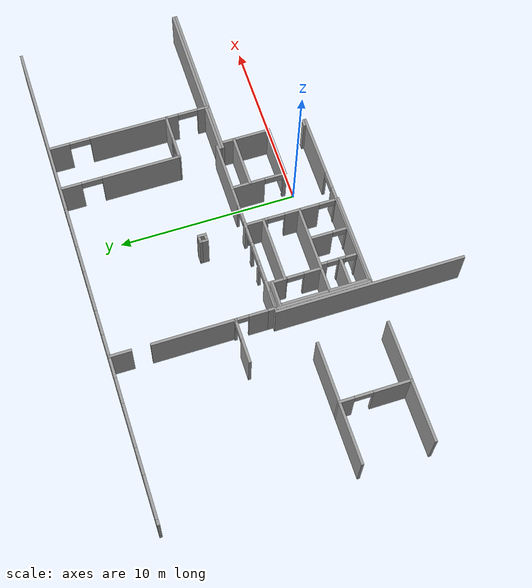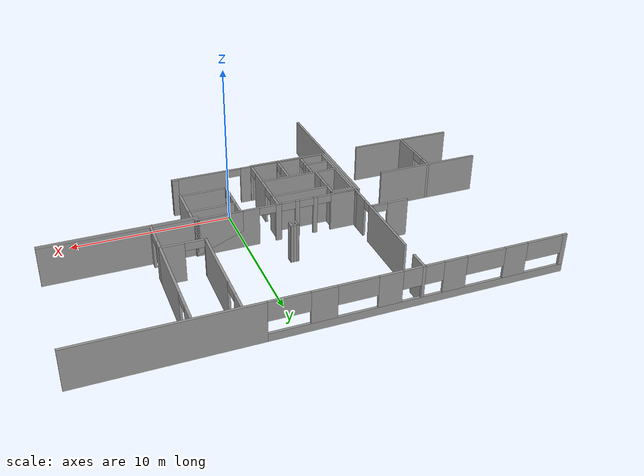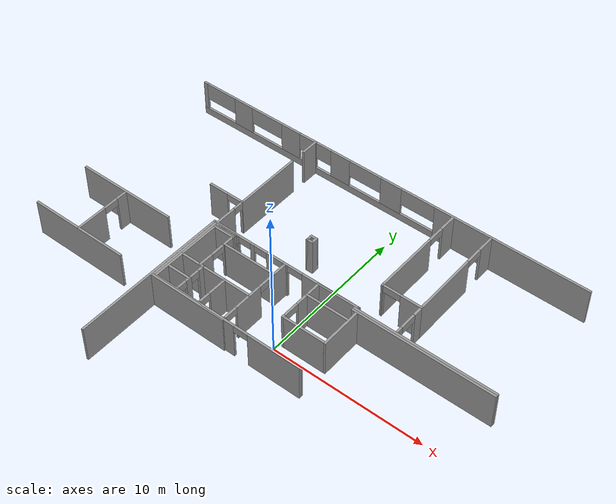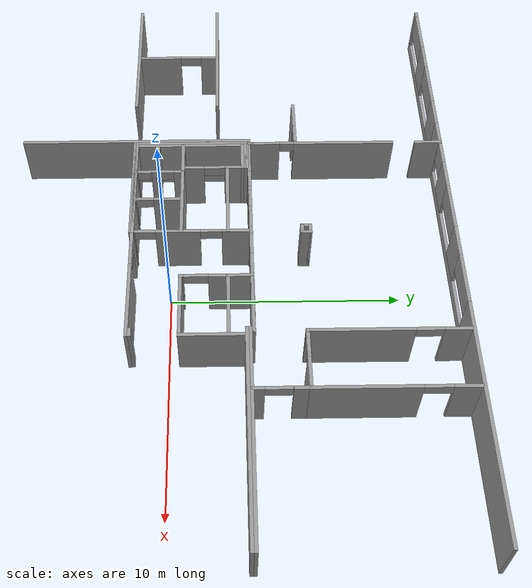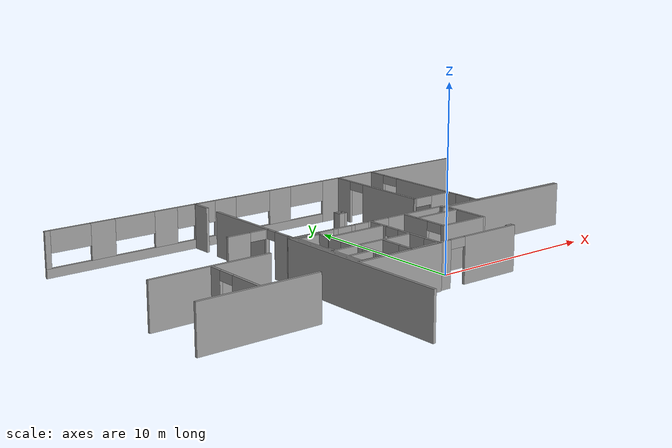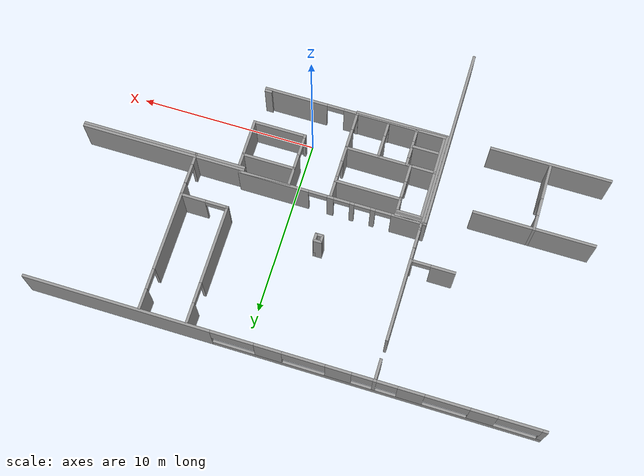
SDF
<sdf version="1.6">
 <model name="basement">
  <pose>-2.12617 -1.77824 0 0 -0 0</pose>
  <link name="Wall_108">
   <pose>2.7255 0.139626 0 0 -0 0</pose>
   <visual name="Wall_108_Visual_0">
    <pose>-2.26972 0 1.25 0 -0 0</pose>
    <geometry><box><size>0.710554 0.15 2.5</size></box></geometry>
    <material>
     <script><uri>file://media/materials/scripts/gazebo.material</uri><name>Gazebo/Grey</name></script>
     <ambient>1 1 1 1</ambient>
    </material>
   </visual>
   <collision name="Wall_108_Collision_0">
    <geometry><box><size>0.710554 0.15 2.5</size></box></geometry>
    <pose>-2.26972 0 1.25 0 -0 0</pose>
   </collision>
   <visual name="Wall_108_Visual_1">
    <pose>0.840079 0 1.25 0 -0 0</pose>
    <geometry><box><size>3.56984 0.15 2.5</size></box></geometry>
    <material>
     <script><uri>file://media/materials/scripts/gazebo.material</uri><name>Gazebo/Grey</name></script>
     <ambient>1 1 1 1</ambient>
    </material>
   </visual>
   <collision name="Wall_108_Collision_1">
    <geometry><box><size>3.56984 0.15 2.5</size></box></geometry>
    <pose>0.840079 0 1.25 0 -0 0</pose>
   </collision>
   <visual name="Wall_108_Visual_2">
    <pose>-1.42964 0 2.25 0 -0 0</pose>
    <geometry><box><size>0.969605 0.15 0.5</size></box></geometry>
    <material>
     <script><uri>file://media/materials/scripts/gazebo.material</uri><name>Gazebo/Grey</name></script>
     <ambient>1 1 1 1</ambient>
    </material>
   </visual>
   <collision name="Wall_108_Collision_2">
    <geometry><box><size>0.969605 0.15 0.5</size></box></geometry>
    <pose>-1.42964 0 2.25 0 -0 0</pose>
   </collision>
  </link>
  <link name="Wall_116">
   <collision name="Wall_116_Collision">
    <geometry><box><size>0.4 0.15 2.5</size></box></geometry>
    <pose>0 0 1.25 0 -0 0</pose>
   </collision>
   <visual name="Wall_116_Visual">
    <pose>0 0 1.25 0 -0 0</pose>
    <geometry><box><size>0.4 0.15 2.5</size></box></geometry>
    <material>
     <script><uri>file://media/materials/scripts/gazebo.material</uri><name>Gazebo/Grey</name></script>
     <ambient>1 1 1 1</ambient>
    </material>
   </visual>
   <pose>5.13257 0.268093 0 0 -0 0</pose>
  </link>
  <link name="Wall_146">
   <collision name="Wall_146_Collision">
    <geometry><box><size>5.25 0.15 2.5</size></box></geometry>
    <pose>0 0 1.25 0 -0 0</pose>
   </collision>
   <visual name="Wall_146_Visual">
    <pose>0 0 1.25 0 -0 0</pose>
    <geometry><box><size>5.25 0.15 2.5</size></box></geometry>
    <material>
     <script><uri>file://media/materials/scripts/gazebo.material</uri><name>Gazebo/Grey</name></script>
     <ambient>1 1 1 1</ambient>
    </material>
   </visual>
   <pose>-5.04892 2.61682 0 0 -0 1.5708</pose>
  </link>
  <link name="Wall_148">
   <collision name="Wall_148_Collision">
    <geometry><box><size>1.5 0.15 2.5</size></box></geometry>
    <pose>0 0 1.25 0 -0 0</pose>
   </collision>
   <visual name="Wall_148_Visual">
    <pose>0 0 1.25 0 -0 0</pose>
    <geometry><box><size>1.5 0.15 2.5</size></box></geometry>
    <material>
     <script><uri>file://media/materials/scripts/gazebo.material</uri><name>Gazebo/Grey</name></script>
     <ambient>1 1 1 1</ambient>
    </material>
   </visual>
   <pose>-4.23612 5.13065 0 0 -0 0</pose>
  </link>
  <link name="Wall_150">
   <collision name="Wall_150_Collision">
    <geometry><box><size>1.5 0.15 2.5</size></box></geometry>
    <pose>0 0 1.25 0 -0 0</pose>
   </collision>
   <visual name="Wall_150_Visual">
    <pose>0 0 1.25 0 -0 0</pose>
    <geometry><box><size>1.5 0.15 2.5</size></box></geometry>
    <material>
     <script><uri>file://media/materials/scripts/gazebo.material</uri><name>Gazebo/Grey</name></script>
     <ambient>1 1 1 1</ambient>
    </material>
   </visual>
   <pose>-4.23669 5.20302 0 0 -0 0</pose>
  </link>
  <link name="Wall_152">
   <collision name="Wall_152_Collision">
    <geometry><box><size>5.25 0.15 2.5</size></box></geometry>
    <pose>0 0 1.25 0 -0 0</pose>
   </collision>
   <visual name="Wall_152_Visual">
    <pose>0 0 1.25 0 -0 0</pose>
    <geometry><box><size>5.25 0.15 2.5</size></box></geometry>
    <material>
     <script><uri>file://media/materials/scripts/gazebo.material</uri><name>Gazebo/Grey</name></script>
     <ambient>1 1 1 1</ambient>
    </material>
   </visual>
   <pose>-2.49774 0.066434 0 0 -0 0</pose>
  </link>
  <link name="Wall_17">
   <collision name="Wall_17_Collision">
    <geometry><box><size>6.75 0.15 2.5</size></box></geometry>
    <pose>0 0 1.25 0 -0 0</pose>
   </collision>
   <visual name="Wall_17_Visual">
    <pose>0 0 1.25 0 -0 0</pose>
    <geometry><box><size>6.75 0.15 2.5</size></box></geometry>
    <material>
     <script><uri>file://media/materials/scripts/gazebo.material</uri><name>Gazebo/Grey</name></script>
     <ambient>1 1 1 1</ambient>
    </material>
   </visual>
   <pose>-10.8156 0.004484 0 0 -0 0</pose>
  </link>
  <link name="Wall_19">
   <collision name="Wall_19_Collision">
    <geometry><box><size>6.75 0.15 2.5</size></box></geometry>
    <pose>0 0 1.25 0 -0 0</pose>
   </collision>
   <visual name="Wall_19_Visual">
    <pose>0 0 1.25 0 -0 0</pose>
    <geometry><box><size>6.75 0.15 2.5</size></box></geometry>
    <material>
     <script><uri>file://media/materials/scripts/gazebo.material</uri><name>Gazebo/Grey</name></script>
     <ambient>1 1 1 1</ambient>
    </material>
   </visual>
   <pose>-10.8156 3.85656 0 0 -0 0</pose>
  </link>
  <link name="Wall_21">
   <pose>-10.8088 1.93156 0 0 0 -1.5708</pose>
   <visual name="Wall_21_Visual_0">
    <pose>-1.56265 0 1.25 0 -0 0</pose>
    <geometry><box><size>0.874704 0.15 2.5</size></box></geometry>
    <material>
     <script><uri>file://media/materials/scripts/gazebo.material</uri><name>Gazebo/Grey</name></script>
     <ambient>1 1 1 1</ambient>
    </material>
   </visual>
   <collision name="Wall_21_Collision_0">
    <geometry><box><size>0.874704 0.15 2.5</size></box></geometry>
    <pose>-1.56265 0 1.25 0 -0 0</pose>
   </collision>
   <visual name="Wall_21_Visual_1">
    <pose>0.933876 0 1.25 0 -0 0</pose>
    <geometry><box><size>2.13225 0.15 2.5</size></box></geometry>
    <material>
     <script><uri>file://media/materials/scripts/gazebo.material</uri><name>Gazebo/Grey</name></script>
     <ambient>1 1 1 1</ambient>
    </material>
   </visual>
   <collision name="Wall_21_Collision_1">
    <geometry><box><size>2.13225 0.15 2.5</size></box></geometry>
    <pose>0.933876 0 1.25 0 -0 0</pose>
   </collision>
   <visual name="Wall_21_Visual_2">
    <pose>-0.628773 0 2.25 0 -0 0</pose>
    <geometry><box><size>0.993048 0.15 0.5</size></box></geometry>
    <material>
     <script><uri>file://media/materials/scripts/gazebo.material</uri><name>Gazebo/Grey</name></script>
     <ambient>1 1 1 1</ambient>
    </material>
   </visual>
   <collision name="Wall_21_Collision_2">
    <geometry><box><size>0.993048 0.15 0.5</size></box></geometry>
    <pose>-0.628773 0 2.25 0 -0 0</pose>
   </collision>
  </link>
  <link name="Wall_23">
   <pose>-5.00676 8.62969 0 0 0 -1.5708</pose>
   <visual name="Wall_23_Visual_0">
    <pose>-1.06412 0 1.25 0 -0 0</pose>
    <geometry><box><size>4.62176 0.15 2.5</size></box></geometry>
    <material>
     <script><uri>file://media/materials/scripts/gazebo.material</uri><name>Gazebo/Grey</name></script>
     <ambient>1 1 1 1</ambient>
    </material>
   </visual>
   <collision name="Wall_23_Collision_0">
    <geometry><box><size>4.62176 0.15 2.5</size></box></geometry>
    <pose>-1.06412 0 1.25 0 -0 0</pose>
   </collision>
   <visual name="Wall_23_Visual_1">
    <pose>2.63296 0 1.25 0 -0 0</pose>
    <geometry><box><size>1.48408 0.15 2.5</size></box></geometry>
    <material>
     <script><uri>file://media/materials/scripts/gazebo.material</uri><name>Gazebo/Grey</name></script>
     <ambient>1 1 1 1</ambient>
    </material>
   </visual>
   <collision name="Wall_23_Collision_1">
    <geometry><box><size>1.48408 0.15 2.5</size></box></geometry>
    <pose>2.63296 0 1.25 0 -0 0</pose>
   </collision>
   <visual name="Wall_23_Visual_2">
    <pose>3.15649 0 1.25 0 -0 0</pose>
    <geometry><box><size>0.437027 0.15 2.5</size></box></geometry>
    <material>
     <script><uri>file://media/materials/scripts/gazebo.material</uri><name>Gazebo/Grey</name></script>
     <ambient>1 1 1 1</ambient>
    </material>
   </visual>
   <collision name="Wall_23_Collision_2">
    <geometry><box><size>0.437027 0.15 2.5</size></box></geometry>
    <pose>3.15649 0 1.25 0 -0 0</pose>
   </collision>
   <visual name="Wall_23_Visual_3">
    <pose>1.56762 0 2.25 0 -0 0</pose>
    <geometry><box><size>0.641714 0.15 0.5</size></box></geometry>
    <material>
     <script><uri>file://media/materials/scripts/gazebo.material</uri><name>Gazebo/Grey</name></script>
     <ambient>1 1 1 1</ambient>
    </material>
   </visual>
   <collision name="Wall_23_Collision_3">
    <geometry><box><size>0.641714 0.15 0.5</size></box></geometry>
    <pose>1.56762 0 2.25 0 -0 0</pose>
   </collision>
  </link>
  <link name="Wall_25">
   <pose>-6.22027 7.45768 0 0 -0 0</pose>
   <visual name="Wall_25_Visual_0">
    <pose>-0.572125 0 1.25 0 -0 0</pose>
    <geometry><box><size>1.35575 0.15 2.5</size></box></geometry>
    <material>
     <script><uri>file://media/materials/scripts/gazebo.material</uri><name>Gazebo/Grey</name></script>
     <ambient>1 1 1 1</ambient>
    </material>
   </visual>
   <collision name="Wall_25_Collision_0">
    <geometry><box><size>1.35575 0.15 2.5</size></box></geometry>
    <pose>-0.572125 0 1.25 0 -0 0</pose>
   </collision>
   <visual name="Wall_25_Visual_1">
    <pose>1.16237 0 1.25 0 -0 0</pose>
    <geometry><box><size>0.17525 0.15 2.5</size></box></geometry>
    <material>
     <script><uri>file://media/materials/scripts/gazebo.material</uri><name>Gazebo/Grey</name></script>
     <ambient>1 1 1 1</ambient>
    </material>
   </visual>
   <collision name="Wall_25_Collision_1">
    <geometry><box><size>0.17525 0.15 2.5</size></box></geometry>
    <pose>1.16237 0 1.25 0 -0 0</pose>
   </collision>
   <visual name="Wall_25_Visual_2">
    <pose>0.59025 0 2.25 0 -0 0</pose>
    <geometry><box><size>0.969 0.15 0.5</size></box></geometry>
    <material>
     <script><uri>file://media/materials/scripts/gazebo.material</uri><name>Gazebo/Grey</name></script>
     <ambient>1 1 1 1</ambient>
    </material>
   </visual>
   <collision name="Wall_25_Collision_2">
    <geometry><box><size>0.969 0.15 0.5</size></box></geometry>
    <pose>0.59025 0 2.25 0 -0 0</pose>
   </collision>
  </link>
  <link name="Wall_27">
   <collision name="Wall_27_Collision">
    <geometry><box><size>1.25 0.15 2.5</size></box></geometry>
    <pose>0 0 1.25 0 -0 0</pose>
   </collision>
   <visual name="Wall_27_Visual">
    <pose>0 0 1.25 0 -0 0</pose>
    <geometry><box><size>1.25 0.15 2.5</size></box></geometry>
    <material>
     <script><uri>file://media/materials/scripts/gazebo.material</uri><name>Gazebo/Grey</name></script>
     <ambient>1 1 1 1</ambient>
    </material>
   </visual>
   <pose>-4.99983 13.6109 0 0 -0 1.5708</pose>
  </link>
  <link name="Wall_29">
   <collision name="Wall_29_Collision">
    <geometry><box><size>10.5 0.15 2.5</size></box></geometry>
    <pose>0 0 1.25 0 -0 0</pose>
   </collision>
   <visual name="Wall_29_Visual">
    <pose>0 0 1.25 0 -0 0</pose>
    <geometry><box><size>10.5 0.15 2.5</size></box></geometry>
    <material>
     <script><uri>file://media/materials/scripts/gazebo.material</uri><name>Gazebo/Grey</name></script>
     <ambient>1 1 1 1</ambient>
    </material>
   </visual>
   <pose>-5.20099 0.119525 0 0 0 -1.5708</pose>
  </link>
  <link name="Wall_33">
   <pose>-0.0257 5.29795 0 0 -0 0</pose>
   <visual name="Wall_33_Visual_0">
    <pose>-4.2845 0 1.25 0 -0 0</pose>
    <geometry><box><size>1.93101 0.15 2.5</size></box></geometry>
    <material>
     <script><uri>file://media/materials/scripts/gazebo.material</uri><name>Gazebo/Grey</name></script>
     <ambient>1 1 1 1</ambient>
    </material>
   </visual>
   <collision name="Wall_33_Collision_0">
    <geometry><box><size>1.93101 0.15 2.5</size></box></geometry>
    <pose>-4.2845 0 1.25 0 -0 0</pose>
   </collision>
   <visual name="Wall_33_Visual_1">
    <pose>-2.30166 0 1.25 0 -0 0</pose>
    <geometry><box><size>0.26897 0.15 2.5</size></box></geometry>
    <material>
     <script><uri>file://media/materials/scripts/gazebo.material</uri><name>Gazebo/Grey</name></script>
     <ambient>1 1 1 1</ambient>
    </material>
   </visual>
   <collision name="Wall_33_Collision_1">
    <geometry><box><size>0.26897 0.15 2.5</size></box></geometry>
    <pose>-2.30166 0 1.25 0 -0 0</pose>
   </collision>
   <visual name="Wall_33_Visual_2">
    <pose>-1.1397 0 1.25 0 -0 0</pose>
    <geometry><box><size>0.254942 0.15 2.5</size></box></geometry>
    <material>
     <script><uri>file://media/materials/scripts/gazebo.material</uri><name>Gazebo/Grey</name></script>
     <ambient>1 1 1 1</ambient>
    </material>
   </visual>
   <collision name="Wall_33_Collision_2">
    <geometry><box><size>0.254942 0.15 2.5</size></box></geometry>
    <pose>-1.1397 0 1.25 0 -0 0</pose>
   </collision>
   <visual name="Wall_33_Visual_3">
    <pose>0.071064 0 1.25 0 -0 0</pose>
    <geometry><box><size>0.366595 0.15 2.5</size></box></geometry>
    <material>
     <script><uri>file://media/materials/scripts/gazebo.material</uri><name>Gazebo/Grey</name></script>
     <ambient>1 1 1 1</ambient>
    </material>
   </visual>
   <collision name="Wall_33_Collision_3">
    <geometry><box><size>0.366595 0.15 2.5</size></box></geometry>
    <pose>0.071064 0 1.25 0 -0 0</pose>
   </collision>
   <visual name="Wall_33_Visual_4">
    <pose>3.26793 0 1.25 0 -0 0</pose>
    <geometry><box><size>3.96414 0.15 2.5</size></box></geometry>
    <material>
     <script><uri>file://media/materials/scripts/gazebo.material</uri><name>Gazebo/Grey</name></script>
     <ambient>1 1 1 1</ambient>
    </material>
   </visual>
   <collision name="Wall_33_Collision_4">
    <geometry><box><size>3.96414 0.15 2.5</size></box></geometry>
    <pose>3.26793 0 1.25 0 -0 0</pose>
   </collision>
   <visual name="Wall_33_Visual_5">
    <pose>3.78189 0 1.25 0 -0 0</pose>
    <geometry><box><size>2.93622 0.15 2.5</size></box></geometry>
    <material>
     <script><uri>file://media/materials/scripts/gazebo.material</uri><name>Gazebo/Grey</name></script>
     <ambient>1 1 1 1</ambient>
    </material>
   </visual>
   <collision name="Wall_33_Collision_5">
    <geometry><box><size>2.93622 0.15 2.5</size></box></geometry>
    <pose>3.78189 0 1.25 0 -0 0</pose>
   </collision>
   <visual name="Wall_33_Visual_6">
    <pose>-2.87757 0 2.25 0 -0 0</pose>
    <geometry><box><size>0.882847 0.15 0.5</size></box></geometry>
    <material>
     <script><uri>file://media/materials/scripts/gazebo.material</uri><name>Gazebo/Grey</name></script>
     <ambient>1 1 1 1</ambient>
    </material>
   </visual>
   <collision name="Wall_33_Collision_6">
    <geometry><box><size>0.882847 0.15 0.5</size></box></geometry>
    <pose>-2.87757 0 2.25 0 -0 0</pose>
   </collision>
   <visual name="Wall_33_Visual_7">
    <pose>-1.71717 0 2.25 0 -0 0</pose>
    <geometry><box><size>0.9 0.15 0.5</size></box></geometry>
    <material>
     <script><uri>file://media/materials/scripts/gazebo.material</uri><name>Gazebo/Grey</name></script>
     <ambient>1 1 1 1</ambient>
    </material>
   </visual>
   <collision name="Wall_33_Collision_7">
    <geometry><box><size>0.9 0.15 0.5</size></box></geometry>
    <pose>-1.71717 0 2.25 0 -0 0</pose>
   </collision>
   <visual name="Wall_33_Visual_8">
    <pose>-0.562234 0 2.25 0 -0 0</pose>
    <geometry><box><size>0.9 0.15 0.5</size></box></geometry>
    <material>
     <script><uri>file://media/materials/scripts/gazebo.material</uri><name>Gazebo/Grey</name></script>
     <ambient>1 1 1 1</ambient>
    </material>
   </visual>
   <collision name="Wall_33_Collision_8">
    <geometry><box><size>0.9 0.15 0.5</size></box></geometry>
    <pose>-0.562234 0 2.25 0 -0 0</pose>
   </collision>
   <visual name="Wall_33_Visual_9">
    <pose>0.768692 0 2.25 0 -0 0</pose>
    <geometry><box><size>1.02866 0.15 0.5</size></box></geometry>
    <material>
     <script><uri>file://media/materials/scripts/gazebo.material</uri><name>Gazebo/Grey</name></script>
     <ambient>1 1 1 1</ambient>
    </material>
   </visual>
   <collision name="Wall_33_Collision_9">
    <geometry><box><size>1.02866 0.15 0.5</size></box></geometry>
    <pose>0.768692 0 2.25 0 -0 0</pose>
   </collision>
  </link>
  <link name="Wall_35">
   <pose>5.14294 10.7592 0 0 -0 1.5708</pose>
   <visual name="Wall_35_Visual_0">
    <pose>-1.14443 0 1.25 0 -0 0</pose>
    <geometry><box><size>4.46114 0.15 2.5</size></box></geometry>
    <material>
     <script><uri>file://media/materials/scripts/gazebo.material</uri><name>Gazebo/Grey</name></script>
     <ambient>1 1 1 1</ambient>
    </material>
   </visual>
   <collision name="Wall_35_Collision_0">
    <geometry><box><size>4.46114 0.15 2.5</size></box></geometry>
    <pose>-1.14443 0 1.25 0 -0 0</pose>
   </collision>
   <visual name="Wall_35_Visual_1">
    <pose>2.80026 0 1.25 0 -0 0</pose>
    <geometry><box><size>1.14948 0.15 2.5</size></box></geometry>
    <material>
     <script><uri>file://media/materials/scripts/gazebo.material</uri><name>Gazebo/Grey</name></script>
     <ambient>1 1 1 1</ambient>
    </material>
   </visual>
   <collision name="Wall_35_Collision_1">
    <geometry><box><size>1.14948 0.15 2.5</size></box></geometry>
    <pose>2.80026 0 1.25 0 -0 0</pose>
   </collision>
   <visual name="Wall_35_Visual_2">
    <pose>1.65583 0 2.25 0 -0 0</pose>
    <geometry><box><size>1.13938 0.15 0.5</size></box></geometry>
    <material>
     <script><uri>file://media/materials/scripts/gazebo.material</uri><name>Gazebo/Grey</name></script>
     <ambient>1 1 1 1</ambient>
    </material>
   </visual>
   <collision name="Wall_35_Collision_2">
    <geometry><box><size>1.13938 0.15 0.5</size></box></geometry>
    <pose>1.65583 0 2.25 0 -0 0</pose>
   </collision>
  </link>
  <link name="Wall_37">
   <pose>6.43878 7.45698 0 0 0 -0.001748</pose>
   <visual name="Wall_37_Visual_0">
    <pose>-1.29409 0 1.25 0 -0 0</pose>
    <geometry><box><size>0.153496 0.15 2.5</size></box></geometry>
    <material>
     <script><uri>file://media/materials/scripts/gazebo.material</uri><name>Gazebo/Grey</name></script>
     <ambient>1 1 1 1</ambient>
    </material>
   </visual>
   <collision name="Wall_37_Collision_0">
    <geometry><box><size>0.153496 0.15 2.5</size></box></geometry>
    <pose>-1.29409 0 1.25 0 -0 0</pose>
   </collision>
   <visual name="Wall_37_Visual_1">
    <pose>0.650436 0 1.25 0 -0 0</pose>
    <geometry><box><size>1.4408 0.15 2.5</size></box></geometry>
    <material>
     <script><uri>file://media/materials/scripts/gazebo.material</uri><name>Gazebo/Grey</name></script>
     <ambient>1 1 1 1</ambient>
    </material>
   </visual>
   <collision name="Wall_37_Collision_1">
    <geometry><box><size>1.4408 0.15 2.5</size></box></geometry>
    <pose>0.650436 0 1.25 0 -0 0</pose>
   </collision>
   <visual name="Wall_37_Visual_2">
    <pose>-0.643652 0 2.25 0 -0 0</pose>
    <geometry><box><size>1.14738 0.15 0.5</size></box></geometry>
    <material>
     <script><uri>file://media/materials/scripts/gazebo.material</uri><name>Gazebo/Grey</name></script>
     <ambient>1 1 1 1</ambient>
    </material>
   </visual>
   <collision name="Wall_37_Collision_2">
    <geometry><box><size>1.14738 0.15 0.5</size></box></geometry>
    <pose>-0.643652 0 2.25 0 -0 0</pose>
   </collision>
  </link>
  <link name="Wall_38">
   <pose>7.74331 10.7547 0 0 -0 1.5708</pose>
   <visual name="Wall_38_Visual_0">
    <pose>-1.1444 0 1.25 0 -0 0</pose>
    <geometry><box><size>4.4612 0.15 2.5</size></box></geometry>
    <material>
     <script><uri>file://media/materials/scripts/gazebo.material</uri><name>Gazebo/Grey</name></script>
     <ambient>1 1 1 1</ambient>
    </material>
   </visual>
   <collision name="Wall_38_Collision_0">
    <geometry><box><size>4.4612 0.15 2.5</size></box></geometry>
    <pose>-1.1444 0 1.25 0 -0 0</pose>
   </collision>
   <visual name="Wall_38_Visual_1">
    <pose>2.80523 0 1.25 0 -0 0</pose>
    <geometry><box><size>1.13954 0.15 2.5</size></box></geometry>
    <material>
     <script><uri>file://media/materials/scripts/gazebo.material</uri><name>Gazebo/Grey</name></script>
     <ambient>1 1 1 1</ambient>
    </material>
   </visual>
   <collision name="Wall_38_Collision_1">
    <geometry><box><size>1.13954 0.15 2.5</size></box></geometry>
    <pose>2.80523 0 1.25 0 -0 0</pose>
   </collision>
   <visual name="Wall_38_Visual_2">
    <pose>1.66083 0 2.25 0 -0 0</pose>
    <geometry><box><size>1.14927 0.15 0.5</size></box></geometry>
    <material>
     <script><uri>file://media/materials/scripts/gazebo.material</uri><name>Gazebo/Grey</name></script>
     <ambient>1 1 1 1</ambient>
    </material>
   </visual>
   <collision name="Wall_38_Collision_2">
    <geometry><box><size>1.14927 0.15 0.5</size></box></geometry>
    <pose>1.66083 0 2.25 0 -0 0</pose>
   </collision>
  </link>
  <link name="Wall_40">
   <pose>7.74284 6.23253 0 0 -0 1.5708</pose>
   <visual name="Wall_40_Visual_0">
    <pose>-0.91423 0 1.25 0 -0 0</pose>
    <geometry><box><size>0.671541 0.15 2.5</size></box></geometry>
    <material>
     <script><uri>file://media/materials/scripts/gazebo.material</uri><name>Gazebo/Grey</name></script>
     <ambient>1 1 1 1</ambient>
    </material>
   </visual>
   <collision name="Wall_40_Collision_0">
    <geometry><box><size>0.671541 0.15 2.5</size></box></geometry>
    <pose>-0.91423 0 1.25 0 -0 0</pose>
   </collision>
   <visual name="Wall_40_Visual_1">
    <pose>0.897548 0 1.25 0 -0 0</pose>
    <geometry><box><size>0.704904 0.15 2.5</size></box></geometry>
    <material>
     <script><uri>file://media/materials/scripts/gazebo.material</uri><name>Gazebo/Grey</name></script>
     <ambient>1 1 1 1</ambient>
    </material>
   </visual>
   <collision name="Wall_40_Collision_1">
    <geometry><box><size>0.704904 0.15 2.5</size></box></geometry>
    <pose>0.897548 0 1.25 0 -0 0</pose>
   </collision>
   <visual name="Wall_40_Visual_2">
    <pose>1.19765 0 1.25 0 -0 0</pose>
    <geometry><box><size>0.104698 0.15 2.5</size></box></geometry>
    <material>
     <script><uri>file://media/materials/scripts/gazebo.material</uri><name>Gazebo/Grey</name></script>
     <ambient>1 1 1 1</ambient>
    </material>
   </visual>
   <collision name="Wall_40_Collision_2">
    <geometry><box><size>0.104698 0.15 2.5</size></box></geometry>
    <pose>1.19765 0 1.25 0 -0 0</pose>
   </collision>
   <visual name="Wall_40_Visual_3">
    <pose>-0.022457 0 2.25 0 -0 0</pose>
    <geometry><box><size>1.11201 0.15 0.5</size></box></geometry>
    <material>
     <script><uri>file://media/materials/scripts/gazebo.material</uri><name>Gazebo/Grey</name></script>
     <ambient>1 1 1 1</ambient>
    </material>
   </visual>
   <collision name="Wall_40_Collision_3">
    <geometry><box><size>1.11201 0.15 0.5</size></box></geometry>
    <pose>-0.022457 0 2.25 0 -0 0</pose>
   </collision>
  </link>
  <link name="Wall_42">
   <collision name="Wall_42_Collision">
    <geometry><box><size>0.5 0.15 2.5</size></box></geometry>
    <pose>0 0 1.25 0 -0 0</pose>
   </collision>
   <visual name="Wall_42_Visual">
    <pose>0 0 1.25 0 -0 0</pose>
    <geometry><box><size>0.5 0.15 2.5</size></box></geometry>
    <material>
     <script><uri>file://media/materials/scripts/gazebo.material</uri><name>Gazebo/Grey</name></script>
     <ambient>1 1 1 1</ambient>
    </material>
   </visual>
   <pose>-0.191022 7.69282 0 0 0 -1.5708</pose>
  </link>
  <link name="Wall_43">
   <collision name="Wall_43_Collision">
    <geometry><box><size>0.5 0.15 2.5</size></box></geometry>
    <pose>0 0 1.25 0 -0 0</pose>
   </collision>
   <visual name="Wall_43_Visual">
    <pose>0 0 1.25 0 -0 0</pose>
    <geometry><box><size>0.5 0.15 2.5</size></box></geometry>
    <material>
     <script><uri>file://media/materials/scripts/gazebo.material</uri><name>Gazebo/Grey</name></script>
     <ambient>1 1 1 1</ambient>
    </material>
   </visual>
   <pose>-0.016022 7.51782 0 0 -0 0</pose>
  </link>
  <link name="Wall_44">
   <collision name="Wall_44_Collision">
    <geometry><box><size>0.5 0.15 2.5</size></box></geometry>
    <pose>0 0 1.25 0 -0 0</pose>
   </collision>
   <visual name="Wall_44_Visual">
    <pose>0 0 1.25 0 -0 0</pose>
    <geometry><box><size>0.5 0.15 2.5</size></box></geometry>
    <material>
     <script><uri>file://media/materials/scripts/gazebo.material</uri><name>Gazebo/Grey</name></script>
     <ambient>1 1 1 1</ambient>
    </material>
   </visual>
   <pose>0.158978 7.69282 0 0 -0 1.5708</pose>
  </link>
  <link name="Wall_45">
   <collision name="Wall_45_Collision">
    <geometry><box><size>0.5 0.15 2.5</size></box></geometry>
    <pose>0 0 1.25 0 -0 0</pose>
   </collision>
   <visual name="Wall_45_Visual">
    <pose>0 0 1.25 0 -0 0</pose>
    <geometry><box><size>0.5 0.15 2.5</size></box></geometry>
    <material>
     <script><uri>file://media/materials/scripts/gazebo.material</uri><name>Gazebo/Grey</name></script>
     <ambient>1 1 1 1</ambient>
    </material>
   </visual>
   <pose>-0.016022 7.86782 0 0 -0 3.14159</pose>
  </link>
  <link name="Wall_47">
   <collision name="Wall_47_Collision">
    <geometry><box><size>2.75 0.15 2.5</size></box></geometry>
    <pose>0 0 1.25 0 -0 0</pose>
   </collision>
   <visual name="Wall_47_Visual">
    <pose>0 0 1.25 0 -0 0</pose>
    <geometry><box><size>2.75 0.15 2.5</size></box></geometry>
    <material>
     <script><uri>file://media/materials/scripts/gazebo.material</uri><name>Gazebo/Grey</name></script>
     <ambient>1 1 1 1</ambient>
    </material>
   </visual>
   <pose>-4.91322 3.5855 0 0 0 -1.5708</pose>
  </link>
  <link name="Wall_49">
   <collision name="Wall_49_Collision">
    <geometry><box><size>5.10941 0.15 2.5</size></box></geometry>
    <pose>0 0 1.25 0 -0 0</pose>
   </collision>
   <visual name="Wall_49_Visual">
    <pose>0 0 1.25 0 -0 0</pose>
    <geometry><box><size>5.10941 0.15 2.5</size></box></geometry>
    <material>
     <script><uri>file://media/materials/scripts/gazebo.material</uri><name>Gazebo/Grey</name></script>
     <ambient>1 1 1 1</ambient>
    </material>
   </visual>
   <pose>-2.43353 2.27623 0 0 -0 3.13785</pose>
  </link>
  <link name="Wall_51">
   <pose>0.057254 2.74787 0 0 0 -1.5708</pose>
   <visual name="Wall_51_Visual_0">
    <pose>-1.95726 0 1.25 0 -0 0</pose>
    <geometry><box><size>1.33549 0.15 2.5</size></box></geometry>
    <material>
     <script><uri>file://media/materials/scripts/gazebo.material</uri><name>Gazebo/Grey</name></script>
     <ambient>1 1 1 1</ambient>
    </material>
   </visual>
   <collision name="Wall_51_Collision_0">
    <geometry><box><size>1.33549 0.15 2.5</size></box></geometry>
    <pose>-1.95726 0 1.25 0 -0 0</pose>
   </collision>
   <visual name="Wall_51_Visual_1">
    <pose>0.62213 0 1.25 0 -0 0</pose>
    <geometry><box><size>1.94767 0.15 2.5</size></box></geometry>
    <material>
     <script><uri>file://media/materials/scripts/gazebo.material</uri><name>Gazebo/Grey</name></script>
     <ambient>1 1 1 1</ambient>
    </material>
   </visual>
   <collision name="Wall_51_Collision_1">
    <geometry><box><size>1.94767 0.15 2.5</size></box></geometry>
    <pose>0.62213 0 1.25 0 -0 0</pose>
   </collision>
   <visual name="Wall_51_Visual_2">
    <pose>2.56048 0 1.25 0 -0 0</pose>
    <geometry><box><size>0.129033 0.15 2.5</size></box></geometry>
    <material>
     <script><uri>file://media/materials/scripts/gazebo.material</uri><name>Gazebo/Grey</name></script>
     <ambient>1 1 1 1</ambient>
    </material>
   </visual>
   <collision name="Wall_51_Collision_2">
    <geometry><box><size>0.129033 0.15 2.5</size></box></geometry>
    <pose>2.56048 0 1.25 0 -0 0</pose>
   </collision>
   <visual name="Wall_51_Visual_3">
    <pose>-0.82061 0 2.25 0 -0 0</pose>
    <geometry><box><size>0.937807 0.15 0.5</size></box></geometry>
    <material>
     <script><uri>file://media/materials/scripts/gazebo.material</uri><name>Gazebo/Grey</name></script>
     <ambient>1 1 1 1</ambient>
    </material>
   </visual>
   <collision name="Wall_51_Collision_3">
    <geometry><box><size>0.937807 0.15 0.5</size></box></geometry>
    <pose>-0.82061 0 2.25 0 -0 0</pose>
   </collision>
   <visual name="Wall_51_Visual_4">
    <pose>2.04597 0 2.25 0 -0 0</pose>
    <geometry><box><size>0.9 0.15 0.5</size></box></geometry>
    <material>
     <script><uri>file://media/materials/scripts/gazebo.material</uri><name>Gazebo/Grey</name></script>
     <ambient>1 1 1 1</ambient>
    </material>
   </visual>
   <collision name="Wall_51_Collision_4">
    <geometry><box><size>0.9 0.15 0.5</size></box></geometry>
    <pose>2.04597 0 2.25 0 -0 0</pose>
   </collision>
  </link>
  <link name="Wall_53">
   <collision name="Wall_53_Collision">
    <geometry><box><size>3.75 0.15 2.5</size></box></geometry>
    <pose>0 0 1.25 0 -0 0</pose>
   </collision>
   <visual name="Wall_53_Visual">
    <pose>0 0 1.25 0 -0 0</pose>
    <geometry><box><size>3.75 0.15 2.5</size></box></geometry>
    <material>
     <script><uri>file://media/materials/scripts/gazebo.material</uri><name>Gazebo/Grey</name></script>
     <ambient>1 1 1 1</ambient>
    </material>
   </visual>
   <pose>-1.76423 4.29808 0 0 -0 0</pose>
  </link>
  <link name="Wall_55">
   <collision name="Wall_55_Collision">
    <geometry><box><size>0.75 0.15 2.5</size></box></geometry>
    <pose>0 0 1.25 0 -0 0</pose>
   </collision>
   <visual name="Wall_55_Visual">
    <pose>0 0 1.25 0 -0 0</pose>
    <geometry><box><size>0.75 0.15 2.5</size></box></geometry>
    <material>
     <script><uri>file://media/materials/scripts/gazebo.material</uri><name>Gazebo/Grey</name></script>
     <ambient>1 1 1 1</ambient>
    </material>
   </visual>
   <pose>-3.56641 4.59591 0 0 0 -1.5708</pose>
  </link>
  <link name="Wall_57">
   <collision name="Wall_57_Collision">
    <geometry><box><size>1.5 0.15 2.5</size></box></geometry>
    <pose>0 0 1.25 0 -0 0</pose>
   </collision>
   <visual name="Wall_57_Visual">
    <pose>0 0 1.25 0 -0 0</pose>
    <geometry><box><size>1.5 0.15 2.5</size></box></geometry>
    <material>
     <script><uri>file://media/materials/scripts/gazebo.material</uri><name>Gazebo/Grey</name></script>
     <ambient>1 1 1 1</ambient>
    </material>
   </visual>
   <pose>-4.23706 4.99373 0 0 -0 0</pose>
  </link>
  <link name="Wall_59">
   <pose>-3.56584 3.2285 0 0 -0 1.5708</pose>
   <visual name="Wall_59_Visual_0">
    <pose>-0.488849 0 1.25 0 -0 0</pose>
    <geometry><box><size>1.0223 0.15 2.5</size></box></geometry>
    <material>
     <script><uri>file://media/materials/scripts/gazebo.material</uri><name>Gazebo/Grey</name></script>
     <ambient>1 1 1 1</ambient>
    </material>
   </visual>
   <collision name="Wall_59_Collision_0">
    <geometry><box><size>1.0223 0.15 2.5</size></box></geometry>
    <pose>-0.488849 0 1.25 0 -0 0</pose>
   </collision>
   <visual name="Wall_59_Visual_1">
    <pose>0.972494 0 1.25 0 -0 0</pose>
    <geometry><box><size>0.055013 0.15 2.5</size></box></geometry>
    <material>
     <script><uri>file://media/materials/scripts/gazebo.material</uri><name>Gazebo/Grey</name></script>
     <ambient>1 1 1 1</ambient>
    </material>
   </visual>
   <collision name="Wall_59_Collision_1">
    <geometry><box><size>0.055013 0.15 2.5</size></box></geometry>
    <pose>0.972494 0 1.25 0 -0 0</pose>
   </collision>
   <visual name="Wall_59_Visual_2">
    <pose>0.483645 0 2.25 0 -0 0</pose>
    <geometry><box><size>0.922684 0.15 0.5</size></box></geometry>
    <material>
     <script><uri>file://media/materials/scripts/gazebo.material</uri><name>Gazebo/Grey</name></script>
     <ambient>1 1 1 1</ambient>
    </material>
   </visual>
   <collision name="Wall_59_Collision_2">
    <geometry><box><size>0.922684 0.15 0.5</size></box></geometry>
    <pose>0.483645 0 2.25 0 -0 0</pose>
   </collision>
  </link>
  <link name="Wall_61">
   <collision name="Wall_61_Collision">
    <geometry><box><size>2.25 0.15 2.5</size></box></geometry>
    <pose>0 0 1.25 0 -0 0</pose>
   </collision>
   <visual name="Wall_61_Visual">
    <pose>0 0 1.25 0 -0 0</pose>
    <geometry><box><size>2.25 0.15 2.5</size></box></geometry>
    <material>
     <script><uri>file://media/materials/scripts/gazebo.material</uri><name>Gazebo/Grey</name></script>
     <ambient>1 1 1 1</ambient>
    </material>
   </visual>
   <pose>-4.90974 1.19358 0 0 -0 1.5708</pose>
  </link>
  <link name="Wall_63">
   <collision name="Wall_63_Collision">
    <geometry><box><size>5.25 0.15 2.5</size></box></geometry>
    <pose>0 0 1.25 0 -0 0</pose>
   </collision>
   <visual name="Wall_63_Visual">
    <pose>0 0 1.25 0 -0 0</pose>
    <geometry><box><size>5.25 0.15 2.5</size></box></geometry>
    <material>
     <script><uri>file://media/materials/scripts/gazebo.material</uri><name>Gazebo/Grey</name></script>
     <ambient>1 1 1 1</ambient>
    </material>
   </visual>
   <pose>-2.49367 0.144889 0 0 -0 0</pose>
  </link>
  <link name="Wall_65">
   <pose>-1.74088 1.21415 0 0 -0 1.5708</pose>
   <visual name="Wall_65_Visual_0">
    <pose>-1.03933 0 1.25 0 -0 0</pose>
    <geometry><box><size>0.171333 0.15 2.5</size></box></geometry>
    <material>
     <script><uri>file://media/materials/scripts/gazebo.material</uri><name>Gazebo/Grey</name></script>
     <ambient>1 1 1 1</ambient>
    </material>
   </visual>
   <collision name="Wall_65_Collision_0">
    <geometry><box><size>0.171333 0.15 2.5</size></box></geometry>
    <pose>-1.03933 0 1.25 0 -0 0</pose>
   </collision>
   <visual name="Wall_65_Visual_1">
    <pose>0.461338 0 1.25 0 -0 0</pose>
    <geometry><box><size>1.32732 0.15 2.5</size></box></geometry>
    <material>
     <script><uri>file://media/materials/scripts/gazebo.material</uri><name>Gazebo/Grey</name></script>
     <ambient>1 1 1 1</ambient>
    </material>
   </visual>
   <collision name="Wall_65_Collision_1">
    <geometry><box><size>1.32732 0.15 2.5</size></box></geometry>
    <pose>0.461338 0 1.25 0 -0 0</pose>
   </collision>
   <visual name="Wall_65_Visual_2">
    <pose>-0.577995 0 2.25 0 -0 0</pose>
    <geometry><box><size>0.751344 0.15 0.5</size></box></geometry>
    <material>
     <script><uri>file://media/materials/scripts/gazebo.material</uri><name>Gazebo/Grey</name></script>
     <ambient>1 1 1 1</ambient>
    </material>
   </visual>
   <collision name="Wall_65_Collision_2">
    <geometry><box><size>0.751344 0.15 0.5</size></box></geometry>
    <pose>-0.577995 0 2.25 0 -0 0</pose>
   </collision>
  </link>
  <link name="Wall_67">
   <pose>-3.33938 1.20265 0 0 -0 1.5708</pose>
   <visual name="Wall_67_Visual_0">
    <pose>-1.03247 0 1.25 0 -0 0</pose>
    <geometry><box><size>0.185068 0.15 2.5</size></box></geometry>
    <material>
     <script><uri>file://media/materials/scripts/gazebo.material</uri><name>Gazebo/Grey</name></script>
     <ambient>1 1 1 1</ambient>
    </material>
   </visual>
   <collision name="Wall_67_Collision_0">
    <geometry><box><size>0.185068 0.15 2.5</size></box></geometry>
    <pose>-1.03247 0 1.25 0 -0 0</pose>
   </collision>
   <visual name="Wall_67_Visual_1">
    <pose>-0.143595 0 1.25 0 -0 0</pose>
    <geometry><box><size>0.386655 0.15 2.5</size></box></geometry>
    <material>
     <script><uri>file://media/materials/scripts/gazebo.material</uri><name>Gazebo/Grey</name></script>
     <ambient>1 1 1 1</ambient>
    </material>
   </visual>
   <collision name="Wall_67_Collision_1">
    <geometry><box><size>0.386655 0.15 2.5</size></box></geometry>
    <pose>-0.143595 0 1.25 0 -0 0</pose>
   </collision>
   <visual name="Wall_67_Visual_2">
    <pose>0.892631 0 1.25 0 -0 0</pose>
    <geometry><box><size>0.464739 0.15 2.5</size></box></geometry>
    <material>
     <script><uri>file://media/materials/scripts/gazebo.material</uri><name>Gazebo/Grey</name></script>
     <ambient>1 1 1 1</ambient>
    </material>
   </visual>
   <collision name="Wall_67_Collision_2">
    <geometry><box><size>0.464739 0.15 2.5</size></box></geometry>
    <pose>0.892631 0 1.25 0 -0 0</pose>
   </collision>
   <visual name="Wall_67_Visual_3">
    <pose>-0.638427 0 2.25 0 -0 0</pose>
    <geometry><box><size>0.60301 0.15 0.5</size></box></geometry>
    <material>
     <script><uri>file://media/materials/scripts/gazebo.material</uri><name>Gazebo/Grey</name></script>
     <ambient>1 1 1 1</ambient>
    </material>
   </visual>
   <collision name="Wall_67_Collision_3">
    <geometry><box><size>0.60301 0.15 0.5</size></box></geometry>
    <pose>-0.638427 0 2.25 0 -0 0</pose>
   </collision>
   <visual name="Wall_67_Visual_4">
    <pose>0.354997 0 2.25 0 -0 0</pose>
    <geometry><box><size>0.610528 0.15 0.5</size></box></geometry>
    <material>
     <script><uri>file://media/materials/scripts/gazebo.material</uri><name>Gazebo/Grey</name></script>
     <ambient>1 1 1 1</ambient>
    </material>
   </visual>
   <collision name="Wall_67_Collision_4">
    <geometry><box><size>0.610528 0.15 0.5</size></box></geometry>
    <pose>0.354997 0 2.25 0 -0 0</pose>
   </collision>
  </link>
  <link name="Wall_69">
   <collision name="Wall_69_Collision">
    <geometry><box><size>1.5 0.15 2.5</size></box></geometry>
    <pose>0 0 1.25 0 -0 0</pose>
   </collision>
   <visual name="Wall_69_Visual">
    <pose>0 0 1.25 0 -0 0</pose>
    <geometry><box><size>1.5 0.15 2.5</size></box></geometry>
    <material>
     <script><uri>file://media/materials/scripts/gazebo.material</uri><name>Gazebo/Grey</name></script>
     <ambient>1 1 1 1</ambient>
    </material>
   </visual>
   <pose>-4.10188 1.14165 0 0 -0 0</pose>
  </link>
  <link name="Wall_7">
   <pose>0.075421 14.1762 0 0 -0 3.14159</pose>
   <visual name="Wall_7_Visual_0">
    <pose>-8.94916 0 1.25 0 -0 0</pose>
    <geometry><box><size>10.3517 0.15 2.5</size></box></geometry>
    <material>
     <script><uri>file://media/materials/scripts/gazebo.material</uri><name>Gazebo/Grey</name></script>
     <ambient>1 1 1 1</ambient>
    </material>
   </visual>
   <collision name="Wall_7_Collision_0">
    <geometry><box><size>10.3517 0.15 2.5</size></box></geometry>
    <pose>-8.94916 0 1.25 0 -0 0</pose>
   </collision>
   <visual name="Wall_7_Visual_1">
    <pose>5.17584 0 0.25 0 -0 0</pose>
    <geometry><box><size>17.8983 0.15 0.5</size></box></geometry>
    <material>
     <script><uri>file://media/materials/scripts/gazebo.material</uri><name>Gazebo/Grey</name></script>
     <ambient>1 1 1 1</ambient>
    </material>
   </visual>
   <collision name="Wall_7_Collision_1">
    <geometry><box><size>17.8983 0.15 0.5</size></box></geometry>
    <pose>5.17584 0 0.25 0 -0 0</pose>
   </collision>
   <visual name="Wall_7_Visual_2">
    <pose>-0.655938 0 1.5 0 -0 0</pose>
    <geometry><box><size>1.50435 0.15 2</size></box></geometry>
    <material>
     <script><uri>file://media/materials/scripts/gazebo.material</uri><name>Gazebo/Grey</name></script>
     <ambient>1 1 1 1</ambient>
    </material>
   </visual>
   <collision name="Wall_7_Collision_2">
    <geometry><box><size>1.50435 0.15 2</size></box></geometry>
    <pose>-0.655938 0 1.5 0 -0 0</pose>
   </collision>
   <visual name="Wall_7_Visual_3">
    <pose>3.13367 0 1.5 0 -0 0</pose>
    <geometry><box><size>1.414 0.15 2</size></box></geometry>
    <material>
     <script><uri>file://media/materials/scripts/gazebo.material</uri><name>Gazebo/Grey</name></script>
     <ambient>1 1 1 1</ambient>
    </material>
   </visual>
   <collision name="Wall_7_Collision_3">
    <geometry><box><size>1.414 0.15 2</size></box></geometry>
    <pose>3.13367 0 1.5 0 -0 0</pose>
   </collision>
   <visual name="Wall_7_Visual_4">
    <pose>5.07313 0 1.5 0 -0 0</pose>
    <geometry><box><size>0.188237 0.15 2</size></box></geometry>
    <material>
     <script><uri>file://media/materials/scripts/gazebo.material</uri><name>Gazebo/Grey</name></script>
     <ambient>1 1 1 1</ambient>
    </material>
   </visual>
   <collision name="Wall_7_Collision_4">
    <geometry><box><size>0.188237 0.15 2</size></box></geometry>
    <pose>5.07313 0 1.5 0 -0 0</pose>
   </collision>
   <visual name="Wall_7_Visual_5">
    <pose>6.99754 0 1.5 0 -0 0</pose>
    <geometry><box><size>1.41729 0.15 2</size></box></geometry>
    <material>
     <script><uri>file://media/materials/scripts/gazebo.material</uri><name>Gazebo/Grey</name></script>
     <ambient>1 1 1 1</ambient>
    </material>
   </visual>
   <collision name="Wall_7_Collision_5">
    <geometry><box><size>1.41729 0.15 2</size></box></geometry>
    <pose>6.99754 0 1.5 0 -0 0</pose>
   </collision>
   <visual name="Wall_7_Visual_6">
    <pose>10.8099 0 1.5 0 -0 0</pose>
    <geometry><box><size>1.43338 0.15 2</size></box></geometry>
    <material>
     <script><uri>file://media/materials/scripts/gazebo.material</uri><name>Gazebo/Grey</name></script>
     <ambient>1 1 1 1</ambient>
    </material>
   </visual>
   <collision name="Wall_7_Collision_6">
    <geometry><box><size>1.43338 0.15 2</size></box></geometry>
    <pose>10.8099 0 1.5 0 -0 0</pose>
   </collision>
   <visual name="Wall_7_Visual_7">
    <pose>13.9751 0 1.5 0 -0 0</pose>
    <geometry><box><size>0.299735 0.15 2</size></box></geometry>
    <material>
     <script><uri>file://media/materials/scripts/gazebo.material</uri><name>Gazebo/Grey</name></script>
     <ambient>1 1 1 1</ambient>
    </material>
   </visual>
   <collision name="Wall_7_Collision_7">
    <geometry><box><size>0.299735 0.15 2</size></box></geometry>
    <pose>13.9751 0 1.5 0 -0 0</pose>
   </collision>
   <visual name="Wall_7_Visual_8">
    <pose>-2.59072 0 1.9 0 -0 0</pose>
    <geometry><box><size>2.36522 0.15 1.2</size></box></geometry>
    <material>
     <script><uri>file://media/materials/scripts/gazebo.material</uri><name>Gazebo/Grey</name></script>
     <ambient>1 1 1 1</ambient>
    </material>
   </visual>
   <collision name="Wall_7_Collision_8">
    <geometry><box><size>2.36522 0.15 1.2</size></box></geometry>
    <pose>-2.59072 0 1.9 0 -0 0</pose>
   </collision>
   <visual name="Wall_7_Visual_9">
    <pose>1.26145 0 1.9 0 -0 0</pose>
    <geometry><box><size>2.33044 0.15 1.2</size></box></geometry>
    <material>
     <script><uri>file://media/materials/scripts/gazebo.material</uri><name>Gazebo/Grey</name></script>
     <ambient>1 1 1 1</ambient>
    </material>
   </visual>
   <collision name="Wall_7_Collision_9">
    <geometry><box><size>2.33044 0.15 1.2</size></box></geometry>
    <pose>1.26145 0 1.9 0 -0 0</pose>
   </collision>
   <visual name="Wall_7_Visual_10">
    <pose>4.40984 0 1.9 0 -0 0</pose>
    <geometry><box><size>1.13834 0.15 1.2</size></box></geometry>
    <material>
     <script><uri>file://media/materials/scripts/gazebo.material</uri><name>Gazebo/Grey</name></script>
     <ambient>1 1 1 1</ambient>
    </material>
   </visual>
   <collision name="Wall_7_Collision_10">
    <geometry><box><size>1.13834 0.15 1.2</size></box></geometry>
    <pose>4.40984 0 1.9 0 -0 0</pose>
   </collision>
   <visual name="Wall_7_Visual_11">
    <pose>5.72807 0 1.9 0 -0 0</pose>
    <geometry><box><size>1.12165 0.15 1.2</size></box></geometry>
    <material>
     <script><uri>file://media/materials/scripts/gazebo.material</uri><name>Gazebo/Grey</name></script>
     <ambient>1 1 1 1</ambient>
    </material>
   </visual>
   <collision name="Wall_7_Collision_11">
    <geometry><box><size>1.12165 0.15 1.2</size></box></geometry>
    <pose>5.72807 0 1.9 0 -0 0</pose>
   </collision>
   <visual name="Wall_7_Visual_12">
    <pose>8.89969 0 1.9 0 -0 0</pose>
    <geometry><box><size>2.387 0.15 1.2</size></box></geometry>
    <material>
     <script><uri>file://media/materials/scripts/gazebo.material</uri><name>Gazebo/Grey</name></script>
     <ambient>1 1 1 1</ambient>
    </material>
   </visual>
   <collision name="Wall_7_Collision_12">
    <geometry><box><size>2.387 0.15 1.2</size></box></geometry>
    <pose>8.89969 0 1.9 0 -0 0</pose>
   </collision>
   <visual name="Wall_7_Visual_13">
    <pose>12.6759 0 1.9 0 -0 0</pose>
    <geometry><box><size>2.29869 0.15 1.2</size></box></geometry>
    <material>
     <script><uri>file://media/materials/scripts/gazebo.material</uri><name>Gazebo/Grey</name></script>
     <ambient>1 1 1 1</ambient>
    </material>
   </visual>
   <collision name="Wall_7_Collision_13">
    <geometry><box><size>2.29869 0.15 1.2</size></box></geometry>
    <pose>12.6759 0 1.9 0 -0 0</pose>
   </collision>
  </link>
  <link name="Wall_72">
   <collision name="Wall_72_Collision">
    <geometry><box><size>9.25 0.15 2.5</size></box></geometry>
    <pose>0 0 1.25 0 -0 0</pose>
   </collision>
   <visual name="Wall_72_Visual">
    <pose>0 0 1.25 0 -0 0</pose>
    <geometry><box><size>9.25 0.15 2.5</size></box></geometry>
    <material>
     <script><uri>file://media/materials/scripts/gazebo.material</uri><name>Gazebo/Grey</name></script>
     <ambient>1 1 1 1</ambient>
    </material>
   </visual>
   <pose>9.56173 5.1543 0 0 -0 0</pose>
  </link>
  <link name="Wall_87">
   <collision name="Wall_87_Collision">
    <geometry><box><size>2.75 0.15 2.5</size></box></geometry>
    <pose>0 0 1.25 0 -0 0</pose>
   </collision>
   <visual name="Wall_87_Visual">
    <pose>0 0 1.25 0 -0 0</pose>
    <geometry><box><size>2.75 0.15 2.5</size></box></geometry>
    <material>
     <script><uri>file://media/materials/scripts/gazebo.material</uri><name>Gazebo/Grey</name></script>
     <ambient>1 1 1 1</ambient>
    </material>
   </visual>
   <pose>3.85972 2.27204 0 0 -0 3.14159</pose>
  </link>
  <link name="Wall_89">
   <collision name="Wall_89_Collision">
    <geometry><box><size>2.75 0.15 2.5</size></box></geometry>
    <pose>0 0 1.25 0 -0 0</pose>
   </collision>
   <visual name="Wall_89_Visual">
    <pose>0 0 1.25 0 -0 0</pose>
    <geometry><box><size>2.75 0.15 2.5</size></box></geometry>
    <material>
     <script><uri>file://media/materials/scripts/gazebo.material</uri><name>Gazebo/Grey</name></script>
     <ambient>1 1 1 1</ambient>
    </material>
   </visual>
   <pose>5.29065 3.57332 0 0 0 -1.5708</pose>
  </link>
  <link name="Wall_92">
   <collision name="Wall_92_Collision">
    <geometry><box><size>9.25 0.15 2.5</size></box></geometry>
    <pose>0 0 1.25 0 -0 0</pose>
   </collision>
   <visual name="Wall_92_Visual">
    <pose>0 0 1.25 0 -0 0</pose>
    <geometry><box><size>9.25 0.15 2.5</size></box></geometry>
    <material>
     <script><uri>file://media/materials/scripts/gazebo.material</uri><name>Gazebo/Grey</name></script>
     <ambient>1 1 1 1</ambient>
    </material>
   </visual>
   <pose>9.55987 5.01359 0 0 -0 0</pose>
  </link>
  <link name="Wall_94">
   <pose>2.41363 3.74686 0 0 -0 1.5708</pose>
   <visual name="Wall_94_Visual_0">
    <pose>-1.44282 0 1.25 0 -0 0</pose>
    <geometry><box><size>0.214361 0.15 2.5</size></box></geometry>
    <material>
     <script><uri>file://media/materials/scripts/gazebo.material</uri><name>Gazebo/Grey</name></script>
     <ambient>1 1 1 1</ambient>
    </material>
   </visual>
   <collision name="Wall_94_Collision_0">
    <geometry><box><size>0.214361 0.15 2.5</size></box></geometry>
    <pose>-1.44282 0 1.25 0 -0 0</pose>
   </collision>
   <visual name="Wall_94_Visual_1">
    <pose>0.624467 0 1.25 0 -0 0</pose>
    <geometry><box><size>1.85107 0.15 2.5</size></box></geometry>
    <material>
     <script><uri>file://media/materials/scripts/gazebo.material</uri><name>Gazebo/Grey</name></script>
     <ambient>1 1 1 1</ambient>
    </material>
   </visual>
   <collision name="Wall_94_Collision_1">
    <geometry><box><size>1.85107 0.15 2.5</size></box></geometry>
    <pose>0.624467 0 1.25 0 -0 0</pose>
   </collision>
   <visual name="Wall_94_Visual_2">
    <pose>-0.818353 0 2.25 0 -0 0</pose>
    <geometry><box><size>1.03457 0.15 0.5</size></box></geometry>
    <material>
     <script><uri>file://media/materials/scripts/gazebo.material</uri><name>Gazebo/Grey</name></script>
     <ambient>1 1 1 1</ambient>
    </material>
   </visual>
   <collision name="Wall_94_Collision_2">
    <geometry><box><size>1.03457 0.15 0.5</size></box></geometry>
    <pose>-0.818353 0 2.25 0 -0 0</pose>
   </collision>
  </link>
  <link name="Wall_96">
   <collision name="Wall_96_Collision">
    <geometry><box><size>3 0.15 2.5</size></box></geometry>
    <pose>0 0 1.25 0 -0 0</pose>
   </collision>
   <visual name="Wall_96_Visual">
    <pose>0 0 1.25 0 -0 0</pose>
    <geometry><box><size>3 0.15 2.5</size></box></geometry>
    <material>
     <script><uri>file://media/materials/scripts/gazebo.material</uri><name>Gazebo/Grey</name></script>
     <ambient>1 1 1 1</ambient>
    </material>
   </visual>
   <pose>3.85593 4.2792 0 0 -0 0</pose>
  </link>
  <static>1</static>
 </model>
</sdf>
